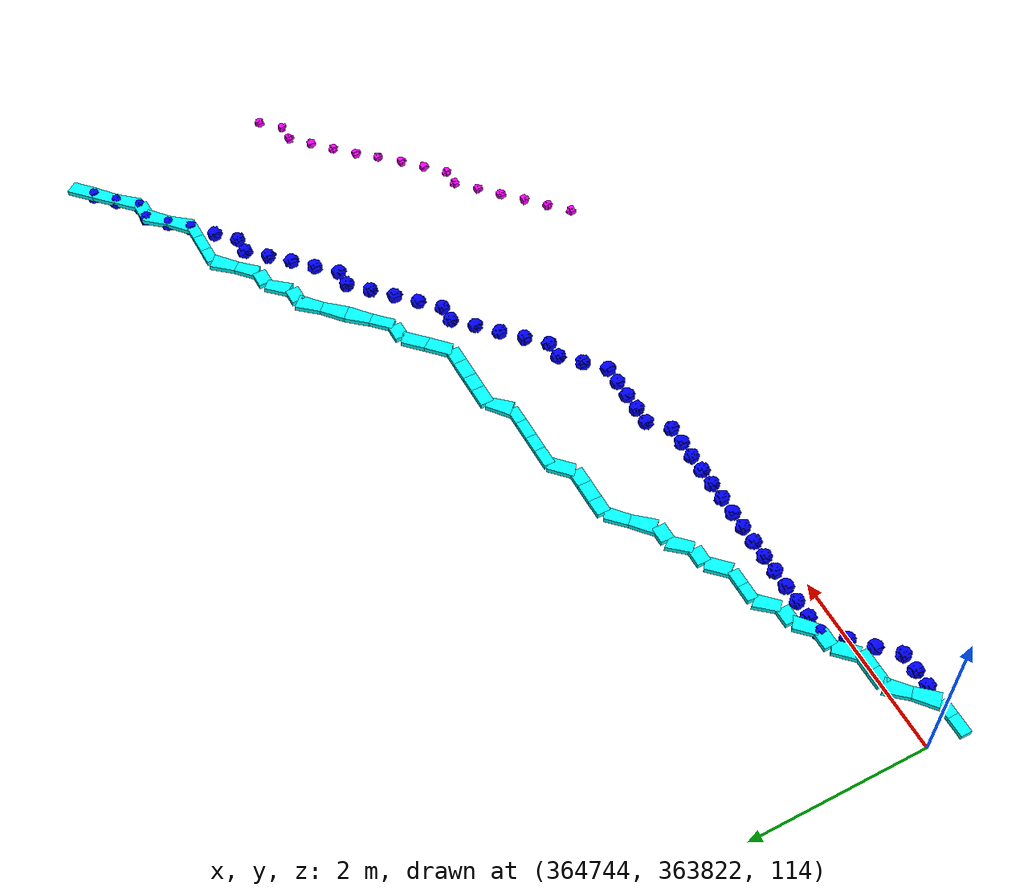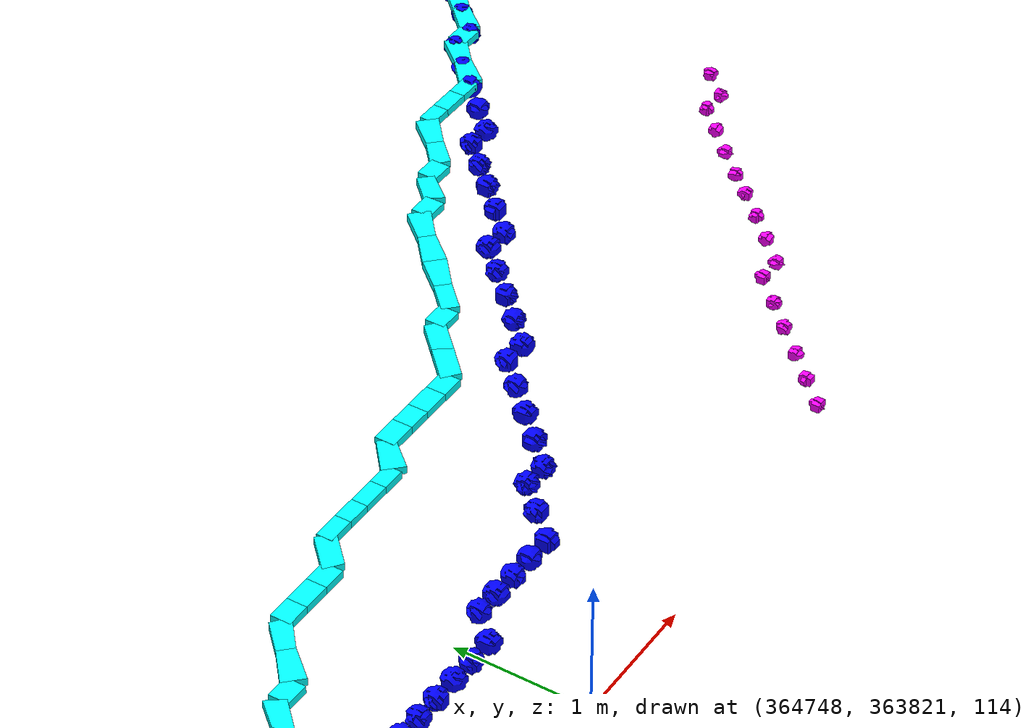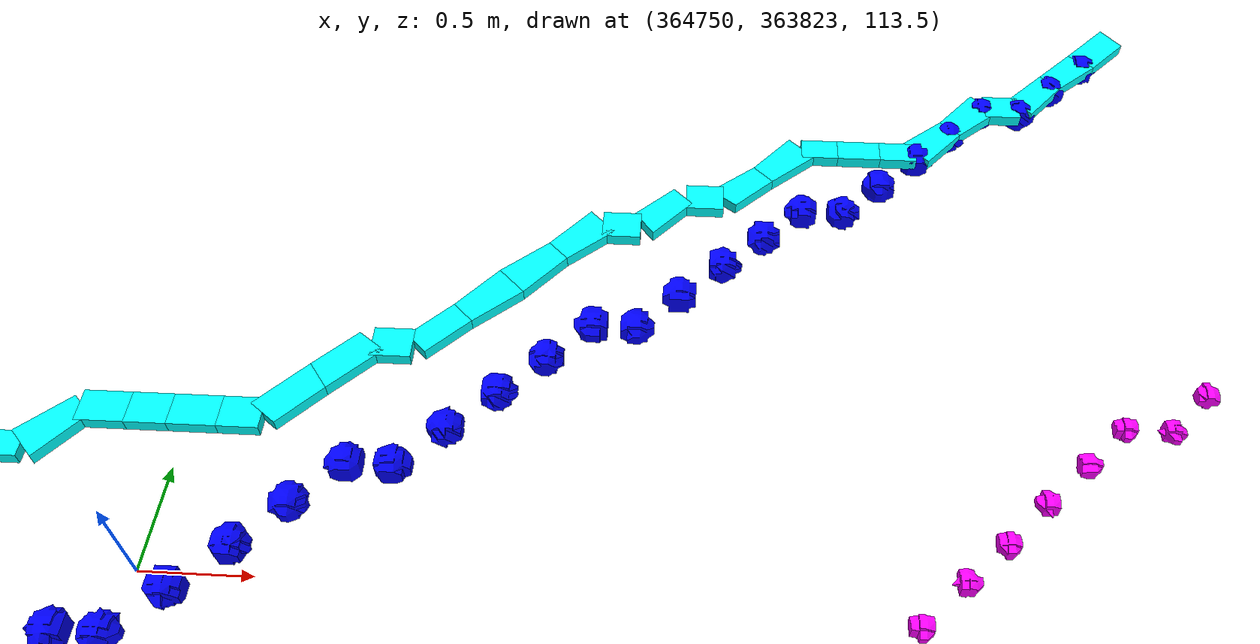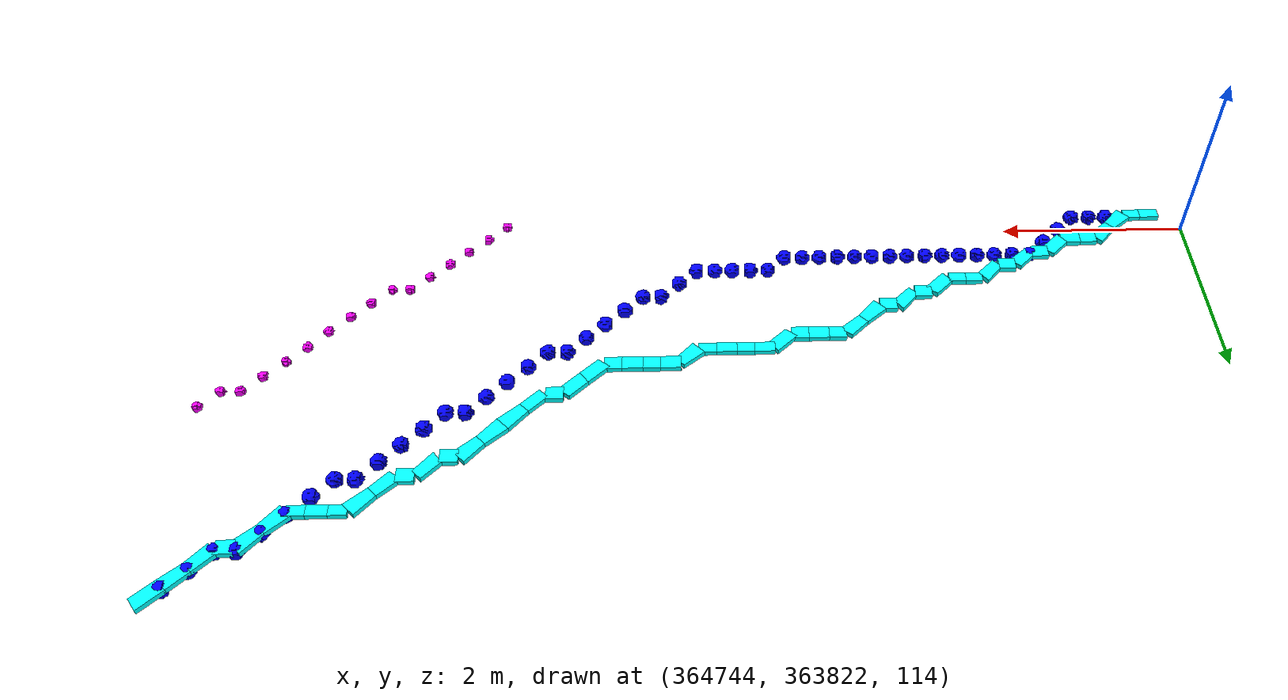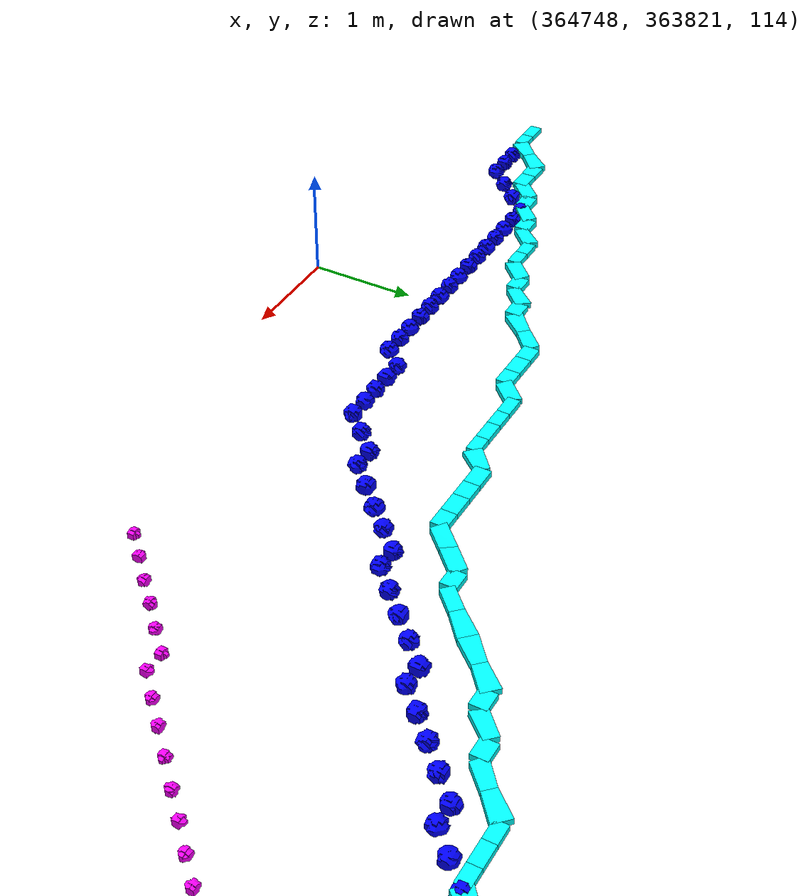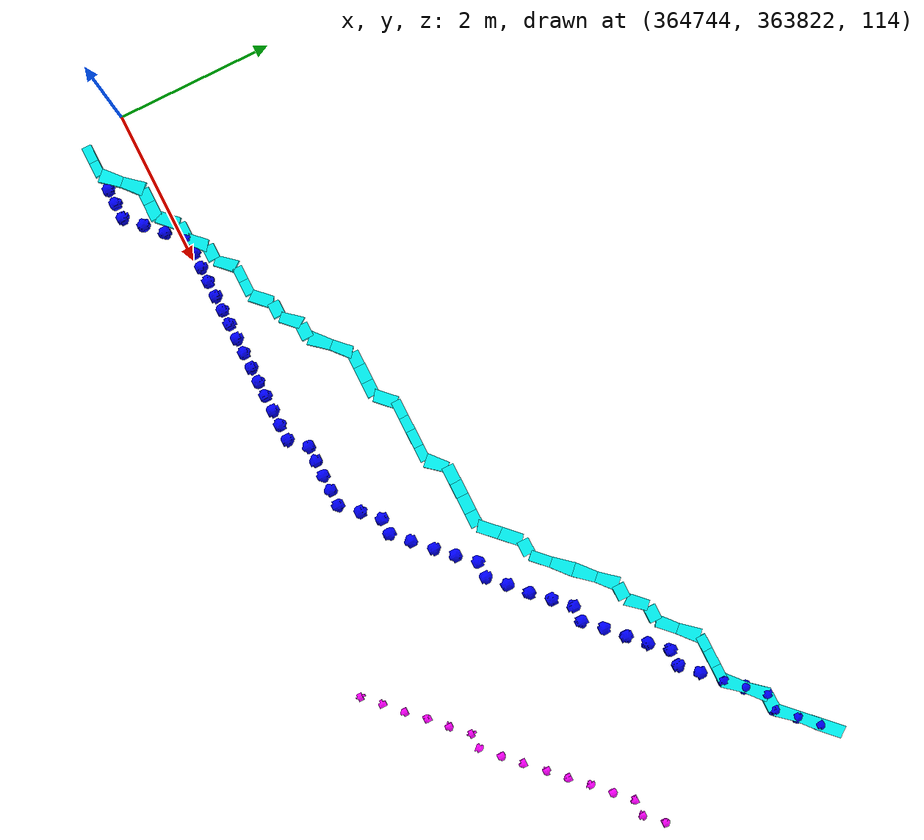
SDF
<sdf version="1.5">
 <world name="default">
  <include><uri>model://sun</uri></include>
  <model name="straight_marker_268">
   <static>true</static>
   <pose>364751.64 363821.44 113.63999999980791 0 0 0</pose>
   <link name="link">
    <visual name="visual">
     <geometry><sphere><radius>0.05</radius></sphere></geometry>
     <material><ambient>1 0 1 1</ambient><diffuse>1 0 1 1</diffuse><emissive>1 0 1 1</emissive></material>
    </visual>
   </link>
  </model>
  <model name="straight_marker_269">
   <static>true</static>
   <pose>364751.84 363821.64 113.64 0 0 0</pose>
   <link name="link">
    <visual name="visual">
     <geometry><sphere><radius>0.05</radius></sphere></geometry>
     <material><ambient>1 0 1 1</ambient><diffuse>1 0 1 1</diffuse><emissive>1 0 1 1</emissive></material>
    </visual>
   </link>
  </model>
  <model name="straight_marker_270">
   <static>true</static>
   <pose>364752.04 363821.84 113.64 0 0 0</pose>
   <link name="link">
    <visual name="visual">
     <geometry><sphere><radius>0.05</radius></sphere></geometry>
     <material><ambient>1 0 1 1</ambient><diffuse>1 0 1 1</diffuse><emissive>1 0 1 1</emissive></material>
    </visual>
   </link>
  </model>
  <model name="straight_marker_271">
   <static>true</static>
   <pose>364752.24 363822.04 113.64999999982828 0 0 0</pose>
   <link name="link">
    <visual name="visual">
     <geometry><sphere><radius>0.05</radius></sphere></geometry>
     <material><ambient>1 0 1 1</ambient><diffuse>1 0 1 1</diffuse><emissive>1 0 1 1</emissive></material>
    </visual>
   </link>
  </model>
  <model name="straight_marker_272">
   <static>true</static>
   <pose>364752.44 363822.24 113.64999999999999 0 0 0</pose>
   <link name="link">
    <visual name="visual">
     <geometry><sphere><radius>0.05</radius></sphere></geometry>
     <material><ambient>1 0 1 1</ambient><diffuse>1 0 1 1</diffuse><emissive>1 0 1 1</emissive></material>
    </visual>
   </link>
  </model>
  <model name="straight_marker_273">
   <static>true</static>
   <pose>364752.64 363822.44 113.659999999805 0 0 0</pose>
   <link name="link">
    <visual name="visual">
     <geometry><sphere><radius>0.05</radius></sphere></geometry>
     <material><ambient>1 0 1 1</ambient><diffuse>1 0 1 1</diffuse><emissive>1 0 1 1</emissive></material>
    </visual>
   </link>
  </model>
  <model name="straight_marker_274">
   <static>true</static>
   <pose>364752.84 363822.44 113.66 0 0 0</pose>
   <link name="link">
    <visual name="visual">
     <geometry><sphere><radius>0.05</radius></sphere></geometry>
     <material><ambient>1 0 1 1</ambient><diffuse>1 0 1 1</diffuse><emissive>1 0 1 1</emissive></material>
    </visual>
   </link>
  </model>
  <model name="straight_marker_275">
   <static>true</static>
   <pose>364753.04 363822.64 113.66 0 0 0</pose>
   <link name="link">
    <visual name="visual">
     <geometry><sphere><radius>0.05</radius></sphere></geometry>
     <material><ambient>1 0 1 1</ambient><diffuse>1 0 1 1</diffuse><emissive>1 0 1 1</emissive></material>
    </visual>
   </link>
  </model>
  <model name="straight_marker_276">
   <static>true</static>
   <pose>364753.24 363822.84 113.66 0 0 0</pose>
   <link name="link">
    <visual name="visual">
     <geometry><sphere><radius>0.05</radius></sphere></geometry>
     <material><ambient>1 0 1 1</ambient><diffuse>1 0 1 1</diffuse><emissive>1 0 1 1</emissive></material>
    </visual>
   </link>
  </model>
  <model name="straight_marker_277">
   <static>true</static>
   <pose>364753.44 363823.04 113.65000000017461 0 0 0</pose>
   <link name="link">
    <visual name="visual">
     <geometry><sphere><radius>0.05</radius></sphere></geometry>
     <material><ambient>1 0 1 1</ambient><diffuse>1 0 1 1</diffuse><emissive>1 0 1 1</emissive></material>
    </visual>
   </link>
  </model>
  <model name="straight_marker_278">
   <static>true</static>
   <pose>364753.64 363823.24 113.6200000005937 0 0 0</pose>
   <link name="link">
    <visual name="visual">
     <geometry><sphere><radius>0.05</radius></sphere></geometry>
     <material><ambient>1 0 1 1</ambient><diffuse>1 0 1 1</diffuse><emissive>1 0 1 1</emissive></material>
    </visual>
   </link>
  </model>
  <model name="straight_marker_279">
   <static>true</static>
   <pose>364753.84 363823.44 113.61999999999999 0 0 0</pose>
   <link name="link">
    <visual name="visual">
     <geometry><sphere><radius>0.05</radius></sphere></geometry>
     <material><ambient>1 0 1 1</ambient><diffuse>1 0 1 1</diffuse><emissive>1 0 1 1</emissive></material>
    </visual>
   </link>
  </model>
  <model name="straight_marker_280">
   <static>true</static>
   <pose>364754.04 363823.64 113.61999999999999 0 0 0</pose>
   <link name="link">
    <visual name="visual">
     <geometry><sphere><radius>0.05</radius></sphere></geometry>
     <material><ambient>1 0 1 1</ambient><diffuse>1 0 1 1</diffuse><emissive>1 0 1 1</emissive></material>
    </visual>
   </link>
  </model>
  <model name="straight_marker_281">
   <static>true</static>
   <pose>364754.24 363823.84 113.61999999999999 0 0 0</pose>
   <link name="link">
    <visual name="visual">
     <geometry><sphere><radius>0.05</radius></sphere></geometry>
     <material><ambient>1 0 1 1</ambient><diffuse>1 0 1 1</diffuse><emissive>1 0 1 1</emissive></material>
    </visual>
   </link>
  </model>
  <model name="straight_marker_282">
   <static>true</static>
   <pose>364754.44 363823.84 113.61999999999999 0 0 0</pose>
   <link name="link">
    <visual name="visual">
     <geometry><sphere><radius>0.05</radius></sphere></geometry>
     <material><ambient>1 0 1 1</ambient><diffuse>1 0 1 1</diffuse><emissive>1 0 1 1</emissive></material>
    </visual>
   </link>
  </model>
  <model name="straight_marker_283">
   <static>true</static>
   <pose>364754.64 363824.04 113.62000000037834 0 0 0</pose>
   <link name="link">
    <visual name="visual">
     <geometry><sphere><radius>0.05</radius></sphere></geometry>
     <material><ambient>1 0 1 1</ambient><diffuse>1 0 1 1</diffuse><emissive>1 0 1 1</emissive></material>
    </visual>
   </link>
  </model>
  <model name="normal_astar_segment_301">
   <static>true</static>
   <pose>364744.14 363821.44 113.69 0 -0.0 0.0</pose>
   <link name="link">
    <visual name="visual">
     <geometry><box><size>0.20000000001164153 0.15 0.06</size></box></geometry>
     <material><ambient>0 1 1 1</ambient><diffuse>0 1 1 1</diffuse><emissive>0 1 1 1</emissive></material>
    </visual>
   </link>
  </model>
  <model name="normal_astar_segment_302">
   <static>true</static>
   <pose>364744.33999999997 363821.44 113.69 0 -0.0 0.0</pose>
   <link name="link">
    <visual name="visual">
     <geometry><box><size>0.20000000001164153 0.15 0.06</size></box></geometry>
     <material><ambient>0 1 1 1</ambient><diffuse>0 1 1 1</diffuse><emissive>0 1 1 1</emissive></material>
    </visual>
   </link>
  </model>
  <model name="normal_astar_segment_303">
   <static>true</static>
   <pose>364744.54000000004 363821.54000000004 113.69499999991415 0 -0.035340618098325664 0.7853981633974483</pose>
   <link name="link">
    <visual name="visual">
     <geometry><box><size>0.28301943397208407 0.15 0.06</size></box></geometry>
     <material><ambient>0 1 1 1</ambient><diffuse>0 1 1 1</diffuse><emissive>0 1 1 1</emissive></material>
    </visual>
   </link>
  </model>
  <model name="normal_astar_segment_304">
   <static>true</static>
   <pose>364744.74 363821.74 113.69999999991414 0 -6.070856696694967e-10 0.7853981633974483</pose>
   <link name="link">
    <visual name="visual">
     <geometry><box><size>0.2828427124910826 0.15 0.06</size></box></geometry>
     <material><ambient>0 1 1 1</ambient><diffuse>0 1 1 1</diffuse><emissive>0 1 1 1</emissive></material>
    </visual>
   </link>
  </model>
  <model name="normal_astar_segment_305">
   <static>true</static>
   <pose>364744.94 363821.84 113.69999999999999 0 -0.0 0.0</pose>
   <link name="link">
    <visual name="visual">
     <geometry><box><size>0.19999999995343387 0.15 0.06</size></box></geometry>
     <material><ambient>0 1 1 1</ambient><diffuse>0 1 1 1</diffuse><emissive>0 1 1 1</emissive></material>
    </visual>
   </link>
  </model>
  <model name="normal_astar_segment_306">
   <static>true</static>
   <pose>364745.14 363821.84 113.69999999999999 0 -0.0 0.0</pose>
   <link name="link">
    <visual name="visual">
     <geometry><box><size>0.20000000001164153 0.15 0.06</size></box></geometry>
     <material><ambient>0 1 1 1</ambient><diffuse>0 1 1 1</diffuse><emissive>0 1 1 1</emissive></material>
    </visual>
   </link>
  </model>
  <model name="normal_astar_segment_307">
   <static>true</static>
   <pose>364745.33999999997 363821.94 113.69999999999999 0 -0.0 0.7853981632519291</pose>
   <link name="link">
    <visual name="visual">
     <geometry><box><size>0.2828427124499236 0.15 0.06</size></box></geometry>
     <material><ambient>0 1 1 1</ambient><diffuse>0 1 1 1</diffuse><emissive>0 1 1 1</emissive></material>
    </visual>
   </link>
  </model>
  <model name="normal_astar_segment_308">
   <static>true</static>
   <pose>364745.54000000004 363822.04 113.7000000001717 0 -1.7171686294114817e-09 0.0</pose>
   <link name="link">
    <visual name="visual">
     <geometry><box><size>0.20000000001164153 0.15 0.06</size></box></geometry>
     <material><ambient>0 1 1 1</ambient><diffuse>0 1 1 1</diffuse><emissive>0 1 1 1</emissive></material>
    </visual>
   </link>
  </model>
  <model name="normal_astar_segment_309">
   <static>true</static>
   <pose>364745.74 363822.14 113.7000000001717 0 1.2142215822976685e-09 0.7853981633974483</pose>
   <link name="link">
    <visual name="visual">
     <geometry><box><size>0.2828427124910826 0.15 0.06</size></box></geometry>
     <material><ambient>0 1 1 1</ambient><diffuse>0 1 1 1</diffuse><emissive>0 1 1 1</emissive></material>
    </visual>
   </link>
  </model>
  <model name="normal_astar_segment_310">
   <static>true</static>
   <pose>364745.94 363822.24 113.69999999999999 0 -0.0 0.0</pose>
   <link name="link">
    <visual name="visual">
     <geometry><box><size>0.19999999995343387 0.15 0.06</size></box></geometry>
     <material><ambient>0 1 1 1</ambient><diffuse>0 1 1 1</diffuse><emissive>0 1 1 1</emissive></material>
    </visual>
   </link>
  </model>
  <model name="normal_astar_segment_311">
   <static>true</static>
   <pose>364746.14 363822.33999999997 113.69999999999999 0 -0.0 0.7853981633974483</pose>
   <link name="link">
    <visual name="visual">
     <geometry><box><size>0.2828427124910826 0.15 0.06</size></box></geometry>
     <material><ambient>0 1 1 1</ambient><diffuse>0 1 1 1</diffuse><emissive>0 1 1 1</emissive></material>
    </visual>
   </link>
  </model>
  <model name="normal_astar_segment_312">
   <static>true</static>
   <pose>364746.33999999997 363822.44 113.69999999999999 0 -0.0 0.0</pose>
   <link name="link">
    <visual name="visual">
     <geometry><box><size>0.20000000001164153 0.15 0.06</size></box></geometry>
     <material><ambient>0 1 1 1</ambient><diffuse>0 1 1 1</diffuse><emissive>0 1 1 1</emissive></material>
    </visual>
   </link>
  </model>
  <model name="normal_astar_segment_313">
   <static>true</static>
   <pose>364746.54000000004 363822.44 113.69999999999999 0 -0.0 0.0</pose>
   <link name="link">
    <visual name="visual">
     <geometry><box><size>0.20000000001164153 0.15 0.06</size></box></geometry>
     <material><ambient>0 1 1 1</ambient><diffuse>0 1 1 1</diffuse><emissive>0 1 1 1</emissive></material>
    </visual>
   </link>
  </model>
  <model name="normal_astar_segment_314">
   <static>true</static>
   <pose>364746.74 363822.54000000004 113.69999999999999 0 -0.0 0.7853981633974483</pose>
   <link name="link">
    <visual name="visual">
     <geometry><box><size>0.2828427124910826 0.15 0.06</size></box></geometry>
     <material><ambient>0 1 1 1</ambient><diffuse>0 1 1 1</diffuse><emissive>0 1 1 1</emissive></material>
    </visual>
   </link>
  </model>
  <model name="normal_astar_segment_315">
   <static>true</static>
   <pose>364746.94 363822.64 113.69999999999999 0 -0.0 0.0</pose>
   <link name="link">
    <visual name="visual">
     <geometry><box><size>0.19999999995343387 0.15 0.06</size></box></geometry>
     <material><ambient>0 1 1 1</ambient><diffuse>0 1 1 1</diffuse><emissive>0 1 1 1</emissive></material>
    </visual>
   </link>
  </model>
  <model name="normal_astar_segment_316">
   <static>true</static>
   <pose>364747.14 363822.74 113.69999999999999 0 -0.0 0.7853981633974483</pose>
   <link name="link">
    <visual name="visual">
     <geometry><box><size>0.2828427124910826 0.15 0.06</size></box></geometry>
     <material><ambient>0 1 1 1</ambient><diffuse>0 1 1 1</diffuse><emissive>0 1 1 1</emissive></material>
    </visual>
   </link>
  </model>
  <model name="normal_astar_segment_317">
   <static>true</static>
   <pose>364747.33999999997 363822.84 113.69999999999999 0 -0.0 0.0</pose>
   <link name="link">
    <visual name="visual">
     <geometry><box><size>0.20000000001164153 0.15 0.06</size></box></geometry>
     <material><ambient>0 1 1 1</ambient><diffuse>0 1 1 1</diffuse><emissive>0 1 1 1</emissive></material>
    </visual>
   </link>
  </model>
  <model name="normal_astar_segment_318">
   <static>true</static>
   <pose>364747.54000000004 363822.94 113.69999999999999 0 -0.0 0.7853981632519291</pose>
   <link name="link">
    <visual name="visual">
     <geometry><box><size>0.2828427124499236 0.15 0.06</size></box></geometry>
     <material><ambient>0 1 1 1</ambient><diffuse>0 1 1 1</diffuse><emissive>0 1 1 1</emissive></material>
    </visual>
   </link>
  </model>
  <model name="normal_astar_segment_319">
   <static>true</static>
   <pose>364747.74 363823.14 113.69999999999999 0 -0.0 0.7853981633974483</pose>
   <link name="link">
    <visual name="visual">
     <geometry><box><size>0.2828427124910826 0.15 0.06</size></box></geometry>
     <material><ambient>0 1 1 1</ambient><diffuse>0 1 1 1</diffuse><emissive>0 1 1 1</emissive></material>
    </visual>
   </link>
  </model>
  <model name="normal_astar_segment_320">
   <static>true</static>
   <pose>364747.94 363823.24 113.69999999999999 0 -0.0 0.0</pose>
   <link name="link">
    <visual name="visual">
     <geometry><box><size>0.19999999995343387 0.15 0.06</size></box></geometry>
     <material><ambient>0 1 1 1</ambient><diffuse>0 1 1 1</diffuse><emissive>0 1 1 1</emissive></material>
    </visual>
   </link>
  </model>
  <model name="normal_astar_segment_321">
   <static>true</static>
   <pose>364748.14 363823.24 113.69999999999999 0 -0.0 0.0</pose>
   <link name="link">
    <visual name="visual">
     <geometry><box><size>0.20000000001164153 0.15 0.06</size></box></geometry>
     <material><ambient>0 1 1 1</ambient><diffuse>0 1 1 1</diffuse><emissive>0 1 1 1</emissive></material>
    </visual>
   </link>
  </model>
  <model name="normal_astar_segment_322">
   <static>true</static>
   <pose>364748.33999999997 363823.24 113.69999999999999 0 -0.0 0.0</pose>
   <link name="link">
    <visual name="visual">
     <geometry><box><size>0.20000000001164153 0.15 0.06</size></box></geometry>
     <material><ambient>0 1 1 1</ambient><diffuse>0 1 1 1</diffuse><emissive>0 1 1 1</emissive></material>
    </visual>
   </link>
  </model>
  <model name="normal_astar_segment_323">
   <static>true</static>
   <pose>364748.54000000004 363823.33999999997 113.70499999990831 0 -0.035340618057278235 0.7853981633974483</pose>
   <link name="link">
    <visual name="visual">
     <geometry><box><size>0.28301943397167334 0.15 0.06</size></box></geometry>
     <material><ambient>0 1 1 1</ambient><diffuse>0 1 1 1</diffuse><emissive>0 1 1 1</emissive></material>
    </visual>
   </link>
  </model>
  <model name="normal_astar_segment_324">
   <static>true</static>
   <pose>364748.74 363823.44 113.70999999990832 0 -9.167422376243198e-10 0.0</pose>
   <link name="link">
    <visual name="visual">
     <geometry><box><size>0.20000000001164153 0.15 0.06</size></box></geometry>
     <material><ambient>0 1 1 1</ambient><diffuse>0 1 1 1</diffuse><emissive>0 1 1 1</emissive></material>
    </visual>
   </link>
  </model>
  <model name="normal_astar_segment_325">
   <static>true</static>
   <pose>364748.94 363823.44 113.71 0 -0.0 0.0</pose>
   <link name="link">
    <visual name="visual">
     <geometry><box><size>0.19999999995343387 0.15 0.06</size></box></geometry>
     <material><ambient>0 1 1 1</ambient><diffuse>0 1 1 1</diffuse><emissive>0 1 1 1</emissive></material>
    </visual>
   </link>
  </model>
  <model name="normal_astar_segment_326">
   <static>true</static>
   <pose>364749.14 363823.44 113.71 0 -0.0 0.0</pose>
   <link name="link">
    <visual name="visual">
     <geometry><box><size>0.20000000001164153 0.15 0.06</size></box></geometry>
     <material><ambient>0 1 1 1</ambient><diffuse>0 1 1 1</diffuse><emissive>0 1 1 1</emissive></material>
    </visual>
   </link>
  </model>
  <model name="normal_astar_segment_327">
   <static>true</static>
   <pose>364749.33999999997 363823.44 113.71 0 -0.0 0.0</pose>
   <link name="link">
    <visual name="visual">
     <geometry><box><size>0.20000000001164153 0.15 0.06</size></box></geometry>
     <material><ambient>0 1 1 1</ambient><diffuse>0 1 1 1</diffuse><emissive>0 1 1 1</emissive></material>
    </visual>
   </link>
  </model>
  <model name="normal_astar_segment_328">
   <static>true</static>
   <pose>364749.54000000004 363823.54000000004 113.71499999990687 0 -0.03534061804699129 0.7853981633974483</pose>
   <link name="link">
    <visual name="visual">
     <geometry><box><size>0.28301943397157037 0.15 0.06</size></box></geometry>
     <material><ambient>0 1 1 1</ambient><diffuse>0 1 1 1</diffuse><emissive>0 1 1 1</emissive></material>
    </visual>
   </link>
  </model>
  <model name="normal_astar_segment_329">
   <static>true</static>
   <pose>364749.74 363823.64 113.71999999990688 0 -9.31308363706554e-10 0.0</pose>
   <link name="link">
    <visual name="visual">
     <geometry><box><size>0.20000000001164153 0.15 0.06</size></box></geometry>
     <material><ambient>0 1 1 1</ambient><diffuse>0 1 1 1</diffuse><emissive>0 1 1 1</emissive></material>
    </visual>
   </link>
  </model>
  <model name="normal_astar_segment_330">
   <static>true</static>
   <pose>364749.94 363823.64 113.72 0 -0.0 0.0</pose>
   <link name="link">
    <visual name="visual">
     <geometry><box><size>0.19999999995343387 0.15 0.06</size></box></geometry>
     <material><ambient>0 1 1 1</ambient><diffuse>0 1 1 1</diffuse><emissive>0 1 1 1</emissive></material>
    </visual>
   </link>
  </model>
  <model name="normal_astar_segment_331">
   <static>true</static>
   <pose>364750.14 363823.64 113.72 0 -0.0 0.0</pose>
   <link name="link">
    <visual name="visual">
     <geometry><box><size>0.20000000001164153 0.15 0.06</size></box></geometry>
     <material><ambient>0 1 1 1</ambient><diffuse>0 1 1 1</diffuse><emissive>0 1 1 1</emissive></material>
    </visual>
   </link>
  </model>
  <model name="normal_astar_segment_332">
   <static>true</static>
   <pose>364750.33999999997 363823.64 113.72 0 -0.0 0.0</pose>
   <link name="link">
    <visual name="visual">
     <geometry><box><size>0.20000000001164153 0.15 0.06</size></box></geometry>
     <material><ambient>0 1 1 1</ambient><diffuse>0 1 1 1</diffuse><emissive>0 1 1 1</emissive></material>
    </visual>
   </link>
  </model>
  <model name="normal_astar_segment_333">
   <static>true</static>
   <pose>364750.54000000004 363823.74 113.7249999999054 0 -0.035340618036654156 0.7853981633974483</pose>
   <link name="link">
    <visual name="visual">
     <geometry><box><size>0.28301943397146695 0.15 0.06</size></box></geometry>
     <material><ambient>0 1 1 1</ambient><diffuse>0 1 1 1</diffuse><emissive>0 1 1 1</emissive></material>
    </visual>
   </link>
  </model>
  <model name="normal_astar_segment_334">
   <static>true</static>
   <pose>364750.74 363823.94 113.7299999999054 0 -6.688342659783461e-10 0.7853981632519291</pose>
   <link name="link">
    <visual name="visual">
     <geometry><box><size>0.2828427124499236 0.15 0.06</size></box></geometry>
     <material><ambient>0 1 1 1</ambient><diffuse>0 1 1 1</diffuse><emissive>0 1 1 1</emissive></material>
    </visual>
   </link>
  </model>
  <model name="normal_astar_segment_335">
   <static>true</static>
   <pose>364750.94 363824.04 113.72999999999999 0 -0.0 0.0</pose>
   <link name="link">
    <visual name="visual">
     <geometry><box><size>0.19999999995343387 0.15 0.06</size></box></geometry>
     <material><ambient>0 1 1 1</ambient><diffuse>0 1 1 1</diffuse><emissive>0 1 1 1</emissive></material>
    </visual>
   </link>
  </model>
  <model name="normal_astar_segment_336">
   <static>true</static>
   <pose>364751.14 363824.14 113.72999999999999 0 -0.0 0.7853981633974483</pose>
   <link name="link">
    <visual name="visual">
     <geometry><box><size>0.2828427124910826 0.15 0.06</size></box></geometry>
     <material><ambient>0 1 1 1</ambient><diffuse>0 1 1 1</diffuse><emissive>0 1 1 1</emissive></material>
    </visual>
   </link>
  </model>
  <model name="normal_astar_segment_337">
   <static>true</static>
   <pose>364751.33999999997 363824.33999999997 113.72999999999999 0 -0.0 0.7853981633974483</pose>
   <link name="link">
    <visual name="visual">
     <geometry><box><size>0.2828427124910826 0.15 0.06</size></box></geometry>
     <material><ambient>0 1 1 1</ambient><diffuse>0 1 1 1</diffuse><emissive>0 1 1 1</emissive></material>
    </visual>
   </link>
  </model>
  <model name="normal_astar_segment_338">
   <static>true</static>
   <pose>364751.54000000004 363824.54000000004 113.72999999999999 0 -0.0 0.7853981633974483</pose>
   <link name="link">
    <visual name="visual">
     <geometry><box><size>0.2828427124910826 0.15 0.06</size></box></geometry>
     <material><ambient>0 1 1 1</ambient><diffuse>0 1 1 1</diffuse><emissive>0 1 1 1</emissive></material>
    </visual>
   </link>
  </model>
  <model name="normal_astar_segment_339">
   <static>true</static>
   <pose>364751.74 363824.74 113.72999999999999 0 -0.0 0.7853981633974483</pose>
   <link name="link">
    <visual name="visual">
     <geometry><box><size>0.2828427124910826 0.15 0.06</size></box></geometry>
     <material><ambient>0 1 1 1</ambient><diffuse>0 1 1 1</diffuse><emissive>0 1 1 1</emissive></material>
    </visual>
   </link>
  </model>
  <model name="normal_astar_segment_340">
   <static>true</static>
   <pose>364751.94 363824.84 113.72999999999999 0 -0.0 0.0</pose>
   <link name="link">
    <visual name="visual">
     <geometry><box><size>0.19999999995343387 0.15 0.06</size></box></geometry>
     <material><ambient>0 1 1 1</ambient><diffuse>0 1 1 1</diffuse><emissive>0 1 1 1</emissive></material>
    </visual>
   </link>
  </model>
  <model name="normal_astar_segment_341">
   <static>true</static>
   <pose>364752.14 363824.94 113.72500000009022 0 0.035340618072603275 0.7853981632519291</pose>
   <link name="link">
    <visual name="visual">
     <geometry><box><size>0.28301943393064194 0.15 0.06</size></box></geometry>
     <material><ambient>0 1 1 1</ambient><diffuse>0 1 1 1</diffuse><emissive>0 1 1 1</emissive></material>
    </visual>
   </link>
  </model>
  <model name="normal_astar_segment_342">
   <static>true</static>
   <pose>364752.33999999997 363825.04 113.72000000018045 0 -0.0 0.0</pose>
   <link name="link">
    <visual name="visual">
     <geometry><box><size>0.20000000001164153 0.15 0.06</size></box></geometry>
     <material><ambient>0 1 1 1</ambient><diffuse>0 1 1 1</diffuse><emissive>0 1 1 1</emissive></material>
    </visual>
   </link>
  </model>
  <model name="normal_astar_segment_343">
   <static>true</static>
   <pose>364752.54000000004 363825.14 113.71500000018771 0 0.035340618653369224 0.7853981633974483</pose>
   <link name="link">
    <visual name="visual">
     <geometry><box><size>0.28301943397763796 0.15 0.06</size></box></geometry>
     <material><ambient>0 1 1 1</ambient><diffuse>0 1 1 1</diffuse><emissive>0 1 1 1</emissive></material>
    </visual>
   </link>
  </model>
  <model name="normal_astar_segment_344">
   <static>true</static>
   <pose>364752.74 363825.33999999997 113.71000000009748 0 6.893836359790751e-10 0.7853981633974483</pose>
   <link name="link">
    <visual name="visual">
     <geometry><box><size>0.2828427124910826 0.15 0.06</size></box></geometry>
     <material><ambient>0 1 1 1</ambient><diffuse>0 1 1 1</diffuse><emissive>0 1 1 1</emissive></material>
    </visual>
   </link>
  </model>
  <model name="normal_astar_segment_345">
   <static>true</static>
   <pose>364752.94 363825.44 113.71 0 -0.0 0.0</pose>
   <link name="link">
    <visual name="visual">
     <geometry><box><size>0.19999999995343387 0.15 0.06</size></box></geometry>
     <material><ambient>0 1 1 1</ambient><diffuse>0 1 1 1</diffuse><emissive>0 1 1 1</emissive></material>
    </visual>
   </link>
  </model>
  <model name="normal_astar_segment_346">
   <static>true</static>
   <pose>364753.14 363825.44 113.71 0 -0.0 0.0</pose>
   <link name="link">
    <visual name="visual">
     <geometry><box><size>0.20000000001164153 0.15 0.06</size></box></geometry>
     <material><ambient>0 1 1 1</ambient><diffuse>0 1 1 1</diffuse><emissive>0 1 1 1</emissive></material>
    </visual>
   </link>
  </model>
  <model name="normal_astar_segment_347">
   <static>true</static>
   <pose>364753.33999999997 363825.44 113.71 0 -0.0 0.0</pose>
   <link name="link">
    <visual name="visual">
     <geometry><box><size>0.20000000001164153 0.15 0.06</size></box></geometry>
     <material><ambient>0 1 1 1</ambient><diffuse>0 1 1 1</diffuse><emissive>0 1 1 1</emissive></material>
    </visual>
   </link>
  </model>
  <model name="normal_astar_segment_348">
   <static>true</static>
   <pose>364753.54000000004 363825.54000000004 113.70500000009893 0 0.03534061800589368 0.7853981633974483</pose>
   <link name="link">
    <visual name="visual">
     <geometry><box><size>0.28301943397115914 0.15 0.06</size></box></geometry>
     <material><ambient>0 1 1 1</ambient><diffuse>0 1 1 1</diffuse><emissive>0 1 1 1</emissive></material>
    </visual>
   </link>
  </model>
  <model name="normal_astar_segment_349">
   <static>true</static>
   <pose>364753.74 363825.74 113.70000000009894 0 6.996834425074411e-10 0.7853981633974483</pose>
   <link name="link">
    <visual name="visual">
     <geometry><box><size>0.2828427124910826 0.15 0.06</size></box></geometry>
     <material><ambient>0 1 1 1</ambient><diffuse>0 1 1 1</diffuse><emissive>0 1 1 1</emissive></material>
    </visual>
   </link>
  </model>
  <model name="normal_astar_segment_350">
   <static>true</static>
   <pose>364753.94 363825.84 113.69999999999999 0 -0.0 0.0</pose>
   <link name="link">
    <visual name="visual">
     <geometry><box><size>0.19999999995343387 0.15 0.06</size></box></geometry>
     <material><ambient>0 1 1 1</ambient><diffuse>0 1 1 1</diffuse><emissive>0 1 1 1</emissive></material>
    </visual>
   </link>
  </model>
  <model name="normal_astar_segment_351">
   <static>true</static>
   <pose>364754.14 363825.94 113.69999999999999 0 -0.0 0.7853981632519291</pose>
   <link name="link">
    <visual name="visual">
     <geometry><box><size>0.2828427124499236 0.15 0.06</size></box></geometry>
     <material><ambient>0 1 1 1</ambient><diffuse>0 1 1 1</diffuse><emissive>0 1 1 1</emissive></material>
    </visual>
   </link>
  </model>
  <model name="normal_astar_segment_352">
   <static>true</static>
   <pose>364754.33999999997 363826.14 113.69999999999999 0 -0.0 0.7853981633974483</pose>
   <link name="link">
    <visual name="visual">
     <geometry><box><size>0.2828427124910826 0.15 0.06</size></box></geometry>
     <material><ambient>0 1 1 1</ambient><diffuse>0 1 1 1</diffuse><emissive>0 1 1 1</emissive></material>
    </visual>
   </link>
  </model>
  <model name="normal_astar_segment_353">
   <static>true</static>
   <pose>364754.54000000004 363826.33999999997 113.70499999989958 0 -0.035340617995556545 0.7853981633974483</pose>
   <link name="link">
    <visual name="visual">
     <geometry><box><size>0.2830194339710557 0.15 0.06</size></box></geometry>
     <material><ambient>0 1 1 1</ambient><diffuse>0 1 1 1</diffuse><emissive>0 1 1 1</emissive></material>
    </visual>
   </link>
  </model>
  <model name="dijkstra_marker_193">
   <static>true</static>
   <pose>364744.64 363821.44 113.66999999982829 0 0 0</pose>
   <link name="link">
    <visual name="visual">
     <geometry><sphere><radius>0.08</radius></sphere></geometry>
     <material><ambient>0 0 1 1</ambient><diffuse>0 0 1 1</diffuse><emissive>0 0 1 1</emissive></material>
    </visual>
   </link>
  </model>
  <model name="dijkstra_marker_194">
   <static>true</static>
   <pose>364744.84 363821.44 113.67 0 0 0</pose>
   <link name="link">
    <visual name="visual">
     <geometry><sphere><radius>0.08</radius></sphere></geometry>
     <material><ambient>0 0 1 1</ambient><diffuse>0 0 1 1</diffuse><emissive>0 0 1 1</emissive></material>
    </visual>
   </link>
  </model>
  <model name="dijkstra_marker_195">
   <static>true</static>
   <pose>364745.04 363821.44 113.67 0 0 0</pose>
   <link name="link">
    <visual name="visual">
     <geometry><sphere><radius>0.08</radius></sphere></geometry>
     <material><ambient>0 0 1 1</ambient><diffuse>0 0 1 1</diffuse><emissive>0 0 1 1</emissive></material>
    </visual>
   </link>
  </model>
  <model name="dijkstra_marker_196">
   <static>true</static>
   <pose>364745.24 363821.64 113.67 0 0 0</pose>
   <link name="link">
    <visual name="visual">
     <geometry><sphere><radius>0.08</radius></sphere></geometry>
     <material><ambient>0 0 1 1</ambient><diffuse>0 0 1 1</diffuse><emissive>0 0 1 1</emissive></material>
    </visual>
   </link>
  </model>
  <model name="dijkstra_marker_197">
   <static>true</static>
   <pose>364745.44 363821.84 113.67 0 0 0</pose>
   <link name="link">
    <visual name="visual">
     <geometry><sphere><radius>0.08</radius></sphere></geometry>
     <material><ambient>0 0 1 1</ambient><diffuse>0 0 1 1</diffuse><emissive>0 0 1 1</emissive></material>
    </visual>
   </link>
  </model>
  <model name="dijkstra_marker_198">
   <static>true</static>
   <pose>364745.64 363822.04 113.67000000034344 0 0 0</pose>
   <link name="link">
    <visual name="visual">
     <geometry><sphere><radius>0.08</radius></sphere></geometry>
     <material><ambient>0 0 1 1</ambient><diffuse>0 0 1 1</diffuse><emissive>0 0 1 1</emissive></material>
    </visual>
   </link>
  </model>
  <model name="dijkstra_marker_199">
   <static>true</static>
   <pose>364745.84 363822.04 113.67000000034344 0 0 0</pose>
   <link name="link">
    <visual name="visual">
     <geometry><sphere><radius>0.08</radius></sphere></geometry>
     <material><ambient>0 0 1 1</ambient><diffuse>0 0 1 1</diffuse><emissive>0 0 1 1</emissive></material>
    </visual>
   </link>
  </model>
  <model name="dijkstra_marker_200">
   <static>true</static>
   <pose>364746.04 363822.04 113.67000000034344 0 0 0</pose>
   <link name="link">
    <visual name="visual">
     <geometry><sphere><radius>0.08</radius></sphere></geometry>
     <material><ambient>0 0 1 1</ambient><diffuse>0 0 1 1</diffuse><emissive>0 0 1 1</emissive></material>
    </visual>
   </link>
  </model>
  <model name="dijkstra_marker_201">
   <static>true</static>
   <pose>364746.24 363822.04 113.67000000034344 0 0 0</pose>
   <link name="link">
    <visual name="visual">
     <geometry><sphere><radius>0.08</radius></sphere></geometry>
     <material><ambient>0 0 1 1</ambient><diffuse>0 0 1 1</diffuse><emissive>0 0 1 1</emissive></material>
    </visual>
   </link>
  </model>
  <model name="dijkstra_marker_202">
   <static>true</static>
   <pose>364746.44 363822.04 113.67000000034344 0 0 0</pose>
   <link name="link">
    <visual name="visual">
     <geometry><sphere><radius>0.08</radius></sphere></geometry>
     <material><ambient>0 0 1 1</ambient><diffuse>0 0 1 1</diffuse><emissive>0 0 1 1</emissive></material>
    </visual>
   </link>
  </model>
  <model name="dijkstra_marker_203">
   <static>true</static>
   <pose>364746.64 363822.04 113.66999999965658 0 0 0</pose>
   <link name="link">
    <visual name="visual">
     <geometry><sphere><radius>0.08</radius></sphere></geometry>
     <material><ambient>0 0 1 1</ambient><diffuse>0 0 1 1</diffuse><emissive>0 0 1 1</emissive></material>
    </visual>
   </link>
  </model>
  <model name="dijkstra_marker_204">
   <static>true</static>
   <pose>364746.84 363822.04 113.66999999965658 0 0 0</pose>
   <link name="link">
    <visual name="visual">
     <geometry><sphere><radius>0.08</radius></sphere></geometry>
     <material><ambient>0 0 1 1</ambient><diffuse>0 0 1 1</diffuse><emissive>0 0 1 1</emissive></material>
    </visual>
   </link>
  </model>
  <model name="dijkstra_marker_205">
   <static>true</static>
   <pose>364747.04 363822.04 113.66999999965658 0 0 0</pose>
   <link name="link">
    <visual name="visual">
     <geometry><sphere><radius>0.08</radius></sphere></geometry>
     <material><ambient>0 0 1 1</ambient><diffuse>0 0 1 1</diffuse><emissive>0 0 1 1</emissive></material>
    </visual>
   </link>
  </model>
  <model name="dijkstra_marker_206">
   <static>true</static>
   <pose>364747.24 363822.04 113.66999999965658 0 0 0</pose>
   <link name="link">
    <visual name="visual">
     <geometry><sphere><radius>0.08</radius></sphere></geometry>
     <material><ambient>0 0 1 1</ambient><diffuse>0 0 1 1</diffuse><emissive>0 0 1 1</emissive></material>
    </visual>
   </link>
  </model>
  <model name="dijkstra_marker_207">
   <static>true</static>
   <pose>364747.44 363822.04 113.66999999965658 0 0 0</pose>
   <link name="link">
    <visual name="visual">
     <geometry><sphere><radius>0.08</radius></sphere></geometry>
     <material><ambient>0 0 1 1</ambient><diffuse>0 0 1 1</diffuse><emissive>0 0 1 1</emissive></material>
    </visual>
   </link>
  </model>
  <model name="dijkstra_marker_208">
   <static>true</static>
   <pose>364747.64 363822.04 113.66999999982829 0 0 0</pose>
   <link name="link">
    <visual name="visual">
     <geometry><sphere><radius>0.08</radius></sphere></geometry>
     <material><ambient>0 0 1 1</ambient><diffuse>0 0 1 1</diffuse><emissive>0 0 1 1</emissive></material>
    </visual>
   </link>
  </model>
  <model name="dijkstra_marker_209">
   <static>true</static>
   <pose>364747.84 363822.04 113.66999999982829 0 0 0</pose>
   <link name="link">
    <visual name="visual">
     <geometry><sphere><radius>0.08</radius></sphere></geometry>
     <material><ambient>0 0 1 1</ambient><diffuse>0 0 1 1</diffuse><emissive>0 0 1 1</emissive></material>
    </visual>
   </link>
  </model>
  <model name="dijkstra_marker_210">
   <static>true</static>
   <pose>364748.04 363822.04 113.66999999982829 0 0 0</pose>
   <link name="link">
    <visual name="visual">
     <geometry><sphere><radius>0.08</radius></sphere></geometry>
     <material><ambient>0 0 1 1</ambient><diffuse>0 0 1 1</diffuse><emissive>0 0 1 1</emissive></material>
    </visual>
   </link>
  </model>
  <model name="dijkstra_marker_211">
   <static>true</static>
   <pose>364748.24 363822.04 113.66999999982829 0 0 0</pose>
   <link name="link">
    <visual name="visual">
     <geometry><sphere><radius>0.08</radius></sphere></geometry>
     <material><ambient>0 0 1 1</ambient><diffuse>0 0 1 1</diffuse><emissive>0 0 1 1</emissive></material>
    </visual>
   </link>
  </model>
  <model name="dijkstra_marker_212">
   <static>true</static>
   <pose>364748.44 363822.04 113.66999999982829 0 0 0</pose>
   <link name="link">
    <visual name="visual">
     <geometry><sphere><radius>0.08</radius></sphere></geometry>
     <material><ambient>0 0 1 1</ambient><diffuse>0 0 1 1</diffuse><emissive>0 0 1 1</emissive></material>
    </visual>
   </link>
  </model>
  <model name="dijkstra_marker_213">
   <static>true</static>
   <pose>364748.64 363822.24 113.67999999981666 0 0 0</pose>
   <link name="link">
    <visual name="visual">
     <geometry><sphere><radius>0.08</radius></sphere></geometry>
     <material><ambient>0 0 1 1</ambient><diffuse>0 0 1 1</diffuse><emissive>0 0 1 1</emissive></material>
    </visual>
   </link>
  </model>
  <model name="dijkstra_marker_214">
   <static>true</static>
   <pose>364748.84 363822.24 113.68 0 0 0</pose>
   <link name="link">
    <visual name="visual">
     <geometry><sphere><radius>0.08</radius></sphere></geometry>
     <material><ambient>0 0 1 1</ambient><diffuse>0 0 1 1</diffuse><emissive>0 0 1 1</emissive></material>
    </visual>
   </link>
  </model>
  <model name="dijkstra_marker_215">
   <static>true</static>
   <pose>364749.04 363822.24 113.68 0 0 0</pose>
   <link name="link">
    <visual name="visual">
     <geometry><sphere><radius>0.08</radius></sphere></geometry>
     <material><ambient>0 0 1 1</ambient><diffuse>0 0 1 1</diffuse><emissive>0 0 1 1</emissive></material>
    </visual>
   </link>
  </model>
  <model name="dijkstra_marker_216">
   <static>true</static>
   <pose>364749.24 363822.24 113.68 0 0 0</pose>
   <link name="link">
    <visual name="visual">
     <geometry><sphere><radius>0.08</radius></sphere></geometry>
     <material><ambient>0 0 1 1</ambient><diffuse>0 0 1 1</diffuse><emissive>0 0 1 1</emissive></material>
    </visual>
   </link>
  </model>
  <model name="dijkstra_marker_217">
   <static>true</static>
   <pose>364749.44 363822.24 113.68 0 0 0</pose>
   <link name="link">
    <visual name="visual">
     <geometry><sphere><radius>0.08</radius></sphere></geometry>
     <material><ambient>0 0 1 1</ambient><diffuse>0 0 1 1</diffuse><emissive>0 0 1 1</emissive></material>
    </visual>
   </link>
  </model>
  <model name="dijkstra_marker_218">
   <static>true</static>
   <pose>364749.64 363822.44 113.68999999981375 0 0 0</pose>
   <link name="link">
    <visual name="visual">
     <geometry><sphere><radius>0.08</radius></sphere></geometry>
     <material><ambient>0 0 1 1</ambient><diffuse>0 0 1 1</diffuse><emissive>0 0 1 1</emissive></material>
    </visual>
   </link>
  </model>
  <model name="dijkstra_marker_219">
   <static>true</static>
   <pose>364749.84 363822.64 113.69000000000001 0 0 0</pose>
   <link name="link">
    <visual name="visual">
     <geometry><sphere><radius>0.08</radius></sphere></geometry>
     <material><ambient>0 0 1 1</ambient><diffuse>0 0 1 1</diffuse><emissive>0 0 1 1</emissive></material>
    </visual>
   </link>
  </model>
  <model name="dijkstra_marker_220">
   <static>true</static>
   <pose>364750.04 363822.64 113.69000000000001 0 0 0</pose>
   <link name="link">
    <visual name="visual">
     <geometry><sphere><radius>0.08</radius></sphere></geometry>
     <material><ambient>0 0 1 1</ambient><diffuse>0 0 1 1</diffuse><emissive>0 0 1 1</emissive></material>
    </visual>
   </link>
  </model>
  <model name="dijkstra_marker_221">
   <static>true</static>
   <pose>364750.24 363822.84 113.69000000000001 0 0 0</pose>
   <link name="link">
    <visual name="visual">
     <geometry><sphere><radius>0.08</radius></sphere></geometry>
     <material><ambient>0 0 1 1</ambient><diffuse>0 0 1 1</diffuse><emissive>0 0 1 1</emissive></material>
    </visual>
   </link>
  </model>
  <model name="dijkstra_marker_222">
   <static>true</static>
   <pose>364750.44 363823.04 113.69000000000001 0 0 0</pose>
   <link name="link">
    <visual name="visual">
     <geometry><sphere><radius>0.08</radius></sphere></geometry>
     <material><ambient>0 0 1 1</ambient><diffuse>0 0 1 1</diffuse><emissive>0 0 1 1</emissive></material>
    </visual>
   </link>
  </model>
  <model name="dijkstra_marker_223">
   <static>true</static>
   <pose>364750.64 363823.24 113.69999999981083 0 0 0</pose>
   <link name="link">
    <visual name="visual">
     <geometry><sphere><radius>0.08</radius></sphere></geometry>
     <material><ambient>0 0 1 1</ambient><diffuse>0 0 1 1</diffuse><emissive>0 0 1 1</emissive></material>
    </visual>
   </link>
  </model>
  <model name="dijkstra_marker_224">
   <static>true</static>
   <pose>364750.84 363823.44 113.7 0 0 0</pose>
   <link name="link">
    <visual name="visual">
     <geometry><sphere><radius>0.08</radius></sphere></geometry>
     <material><ambient>0 0 1 1</ambient><diffuse>0 0 1 1</diffuse><emissive>0 0 1 1</emissive></material>
    </visual>
   </link>
  </model>
  <model name="dijkstra_marker_225">
   <static>true</static>
   <pose>364751.04 363823.44 113.7 0 0 0</pose>
   <link name="link">
    <visual name="visual">
     <geometry><sphere><radius>0.08</radius></sphere></geometry>
     <material><ambient>0 0 1 1</ambient><diffuse>0 0 1 1</diffuse><emissive>0 0 1 1</emissive></material>
    </visual>
   </link>
  </model>
  <model name="dijkstra_marker_226">
   <static>true</static>
   <pose>364751.24 363823.64 113.7 0 0 0</pose>
   <link name="link">
    <visual name="visual">
     <geometry><sphere><radius>0.08</radius></sphere></geometry>
     <material><ambient>0 0 1 1</ambient><diffuse>0 0 1 1</diffuse><emissive>0 0 1 1</emissive></material>
    </visual>
   </link>
  </model>
  <model name="dijkstra_marker_227">
   <static>true</static>
   <pose>364751.44 363823.84 113.7 0 0 0</pose>
   <link name="link">
    <visual name="visual">
     <geometry><sphere><radius>0.08</radius></sphere></geometry>
     <material><ambient>0 0 1 1</ambient><diffuse>0 0 1 1</diffuse><emissive>0 0 1 1</emissive></material>
    </visual>
   </link>
  </model>
  <model name="dijkstra_marker_228">
   <static>true</static>
   <pose>364751.64 363824.04 113.70000000017754 0 0 0</pose>
   <link name="link">
    <visual name="visual">
     <geometry><sphere><radius>0.08</radius></sphere></geometry>
     <material><ambient>0 0 1 1</ambient><diffuse>0 0 1 1</diffuse><emissive>0 0 1 1</emissive></material>
    </visual>
   </link>
  </model>
  <model name="dijkstra_marker_229">
   <static>true</static>
   <pose>364751.84 363824.24 113.7 0 0 0</pose>
   <link name="link">
    <visual name="visual">
     <geometry><sphere><radius>0.08</radius></sphere></geometry>
     <material><ambient>0 0 1 1</ambient><diffuse>0 0 1 1</diffuse><emissive>0 0 1 1</emissive></material>
    </visual>
   </link>
  </model>
  <model name="dijkstra_marker_230">
   <static>true</static>
   <pose>364752.04 363824.24 113.7 0 0 0</pose>
   <link name="link">
    <visual name="visual">
     <geometry><sphere><radius>0.08</radius></sphere></geometry>
     <material><ambient>0 0 1 1</ambient><diffuse>0 0 1 1</diffuse><emissive>0 0 1 1</emissive></material>
    </visual>
   </link>
  </model>
  <model name="dijkstra_marker_231">
   <static>true</static>
   <pose>364752.24 363824.44 113.7 0 0 0</pose>
   <link name="link">
    <visual name="visual">
     <geometry><sphere><radius>0.08</radius></sphere></geometry>
     <material><ambient>0 0 1 1</ambient><diffuse>0 0 1 1</diffuse><emissive>0 0 1 1</emissive></material>
    </visual>
   </link>
  </model>
  <model name="dijkstra_marker_232">
   <static>true</static>
   <pose>364752.44 363824.64 113.7 0 0 0</pose>
   <link name="link">
    <visual name="visual">
     <geometry><sphere><radius>0.08</radius></sphere></geometry>
     <material><ambient>0 0 1 1</ambient><diffuse>0 0 1 1</diffuse><emissive>0 0 1 1</emissive></material>
    </visual>
   </link>
  </model>
  <model name="dijkstra_marker_233">
   <static>true</static>
   <pose>364752.64 363824.84 113.69000000019501 0 0 0</pose>
   <link name="link">
    <visual name="visual">
     <geometry><sphere><radius>0.08</radius></sphere></geometry>
     <material><ambient>0 0 1 1</ambient><diffuse>0 0 1 1</diffuse><emissive>0 0 1 1</emissive></material>
    </visual>
   </link>
  </model>
  <model name="dijkstra_marker_234">
   <static>true</static>
   <pose>364752.84 363825.04 113.68000000018044 0 0 0</pose>
   <link name="link">
    <visual name="visual">
     <geometry><sphere><radius>0.08</radius></sphere></geometry>
     <material><ambient>0 0 1 1</ambient><diffuse>0 0 1 1</diffuse><emissive>0 0 1 1</emissive></material>
    </visual>
   </link>
  </model>
  <model name="dijkstra_marker_235">
   <static>true</static>
   <pose>364753.04 363825.04 113.68000000018044 0 0 0</pose>
   <link name="link">
    <visual name="visual">
     <geometry><sphere><radius>0.08</radius></sphere></geometry>
     <material><ambient>0 0 1 1</ambient><diffuse>0 0 1 1</diffuse><emissive>0 0 1 1</emissive></material>
    </visual>
   </link>
  </model>
  <model name="dijkstra_marker_236">
   <static>true</static>
   <pose>364753.24 363825.24 113.68 0 0 0</pose>
   <link name="link">
    <visual name="visual">
     <geometry><sphere><radius>0.08</radius></sphere></geometry>
     <material><ambient>0 0 1 1</ambient><diffuse>0 0 1 1</diffuse><emissive>0 0 1 1</emissive></material>
    </visual>
   </link>
  </model>
  <model name="dijkstra_marker_237">
   <static>true</static>
   <pose>364753.44 363825.44 113.68 0 0 0</pose>
   <link name="link">
    <visual name="visual">
     <geometry><sphere><radius>0.08</radius></sphere></geometry>
     <material><ambient>0 0 1 1</ambient><diffuse>0 0 1 1</diffuse><emissive>0 0 1 1</emissive></material>
    </visual>
   </link>
  </model>
  <model name="dijkstra_marker_238">
   <static>true</static>
   <pose>364753.64 363825.64 113.6700000001979 0 0 0</pose>
   <link name="link">
    <visual name="visual">
     <geometry><sphere><radius>0.08</radius></sphere></geometry>
     <material><ambient>0 0 1 1</ambient><diffuse>0 0 1 1</diffuse><emissive>0 0 1 1</emissive></material>
    </visual>
   </link>
  </model>
  <model name="dijkstra_marker_239">
   <static>true</static>
   <pose>364753.84 363825.84 113.67 0 0 0</pose>
   <link name="link">
    <visual name="visual">
     <geometry><sphere><radius>0.08</radius></sphere></geometry>
     <material><ambient>0 0 1 1</ambient><diffuse>0 0 1 1</diffuse><emissive>0 0 1 1</emissive></material>
    </visual>
   </link>
  </model>
  <model name="dijkstra_marker_240">
   <static>true</static>
   <pose>364754.04 363825.84 113.67 0 0 0</pose>
   <link name="link">
    <visual name="visual">
     <geometry><sphere><radius>0.08</radius></sphere></geometry>
     <material><ambient>0 0 1 1</ambient><diffuse>0 0 1 1</diffuse><emissive>0 0 1 1</emissive></material>
    </visual>
   </link>
  </model>
  <model name="dijkstra_marker_241">
   <static>true</static>
   <pose>364754.24 363826.04 113.67 0 0 0</pose>
   <link name="link">
    <visual name="visual">
     <geometry><sphere><radius>0.08</radius></sphere></geometry>
     <material><ambient>0 0 1 1</ambient><diffuse>0 0 1 1</diffuse><emissive>0 0 1 1</emissive></material>
    </visual>
   </link>
  </model>
  <model name="dijkstra_marker_242">
   <static>true</static>
   <pose>364754.44 363826.24 113.67 0 0 0</pose>
   <link name="link">
    <visual name="visual">
     <geometry><sphere><radius>0.08</radius></sphere></geometry>
     <material><ambient>0 0 1 1</ambient><diffuse>0 0 1 1</diffuse><emissive>0 0 1 1</emissive></material>
    </visual>
   </link>
  </model>
 </world>
</sdf>
